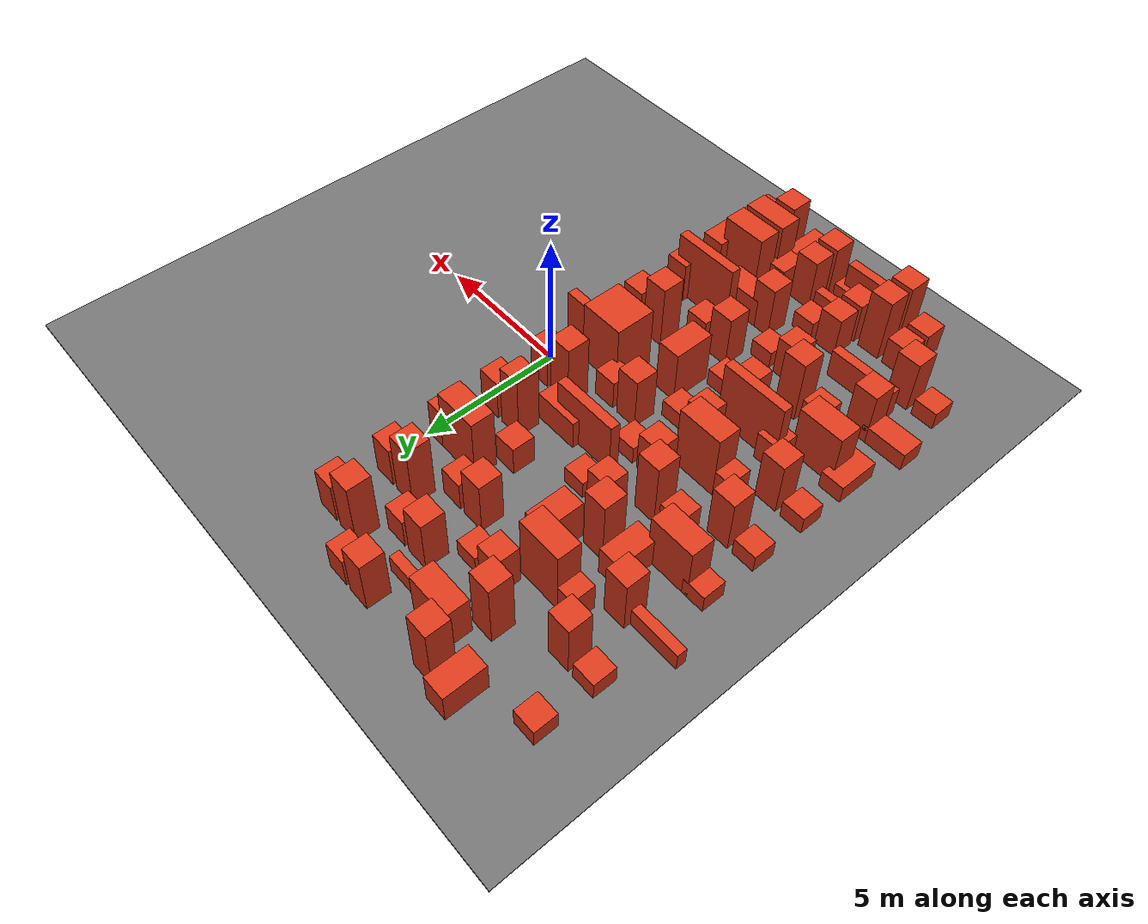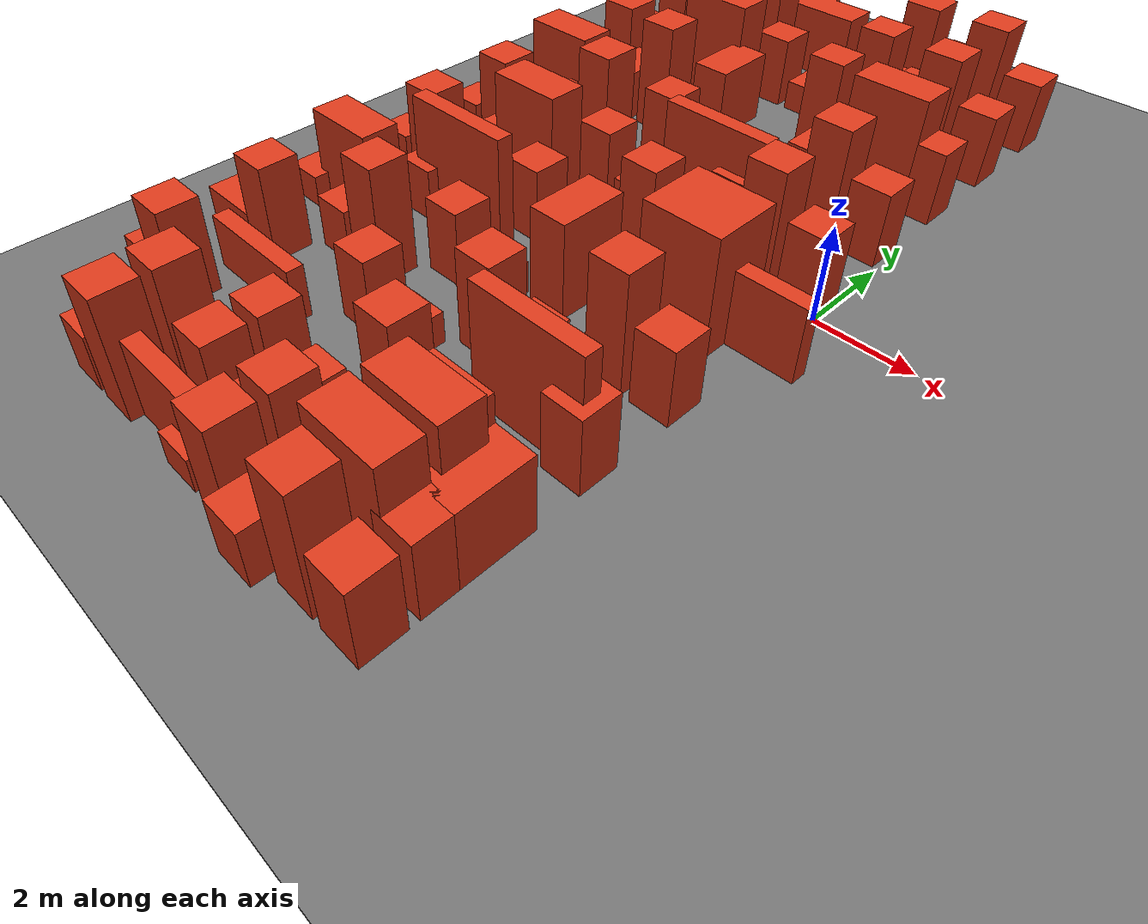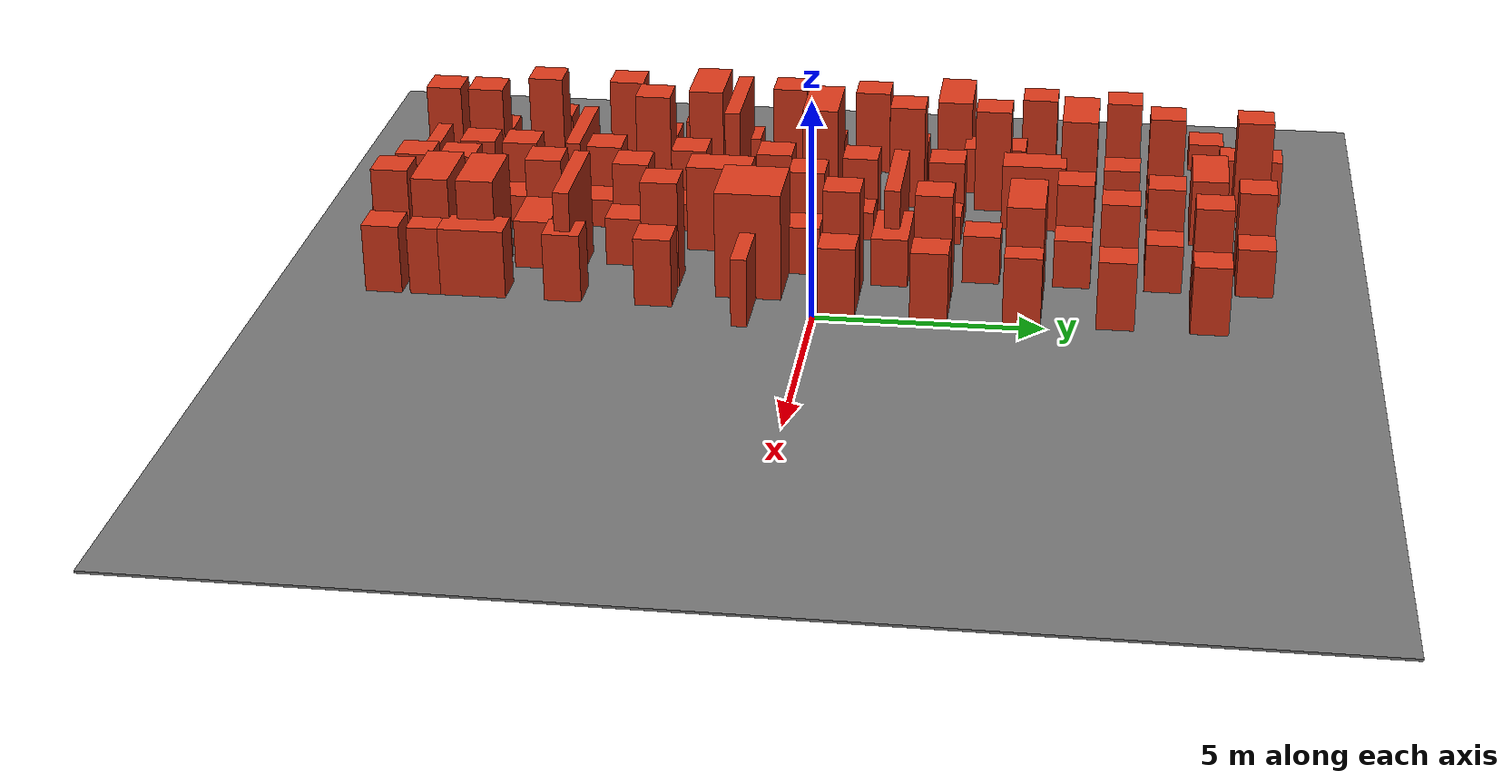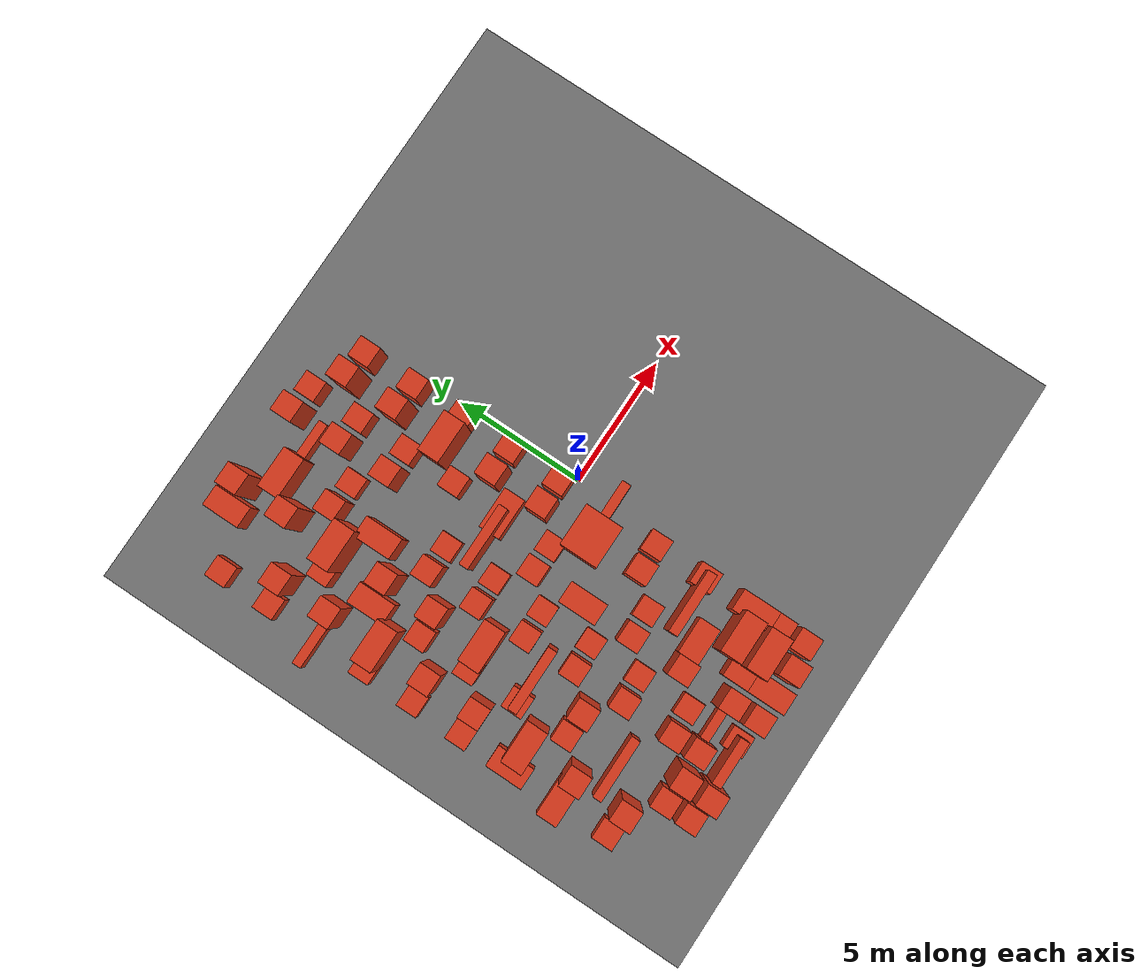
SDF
<sdf version="1.6">
 <world name="dense50_ground_footprint">
  <include><uri>model://sun</uri></include>
  <model name="ground_plane">
   <static>true</static>
   <link name="link">
    <collision name="collision"><geometry><box><size>24 24 0.05</size></box></geometry></collision>
    <visual name="visual">
     <geometry><box><size>24 24 0.05</size></box></geometry>
     <material><ambient>0.35 0.35 0.35 1</ambient><diffuse>0.45 0.45 0.45 1</diffuse></material>
    </visual>
   </link>
  </model>
  <model name="dense50_obstacle_000">
   <static>true</static>
   <pose>-5.500 -9.500 0.800 0 0 0</pose>
   <link name="link">
    <collision name="collision"><geometry><box><size>2.400 0.350 1.600</size></box></geometry></collision>
    <visual name="visual">
     <geometry><box><size>2.400 0.350 1.600</size></box></geometry>
     <material><ambient>0.65 0.16 0.08 1</ambient><diffuse>0.85 0.22 0.10 1</diffuse></material>
    </visual>
   </link>
  </model>
  <model name="dense50_obstacle_001">
   <static>true</static>
   <pose>-4.500 -9.500 0.350 0 0 0</pose>
   <link name="link">
    <collision name="collision"><geometry><box><size>0.820 0.820 0.700</size></box></geometry></collision>
    <visual name="visual">
     <geometry><box><size>0.820 0.820 0.700</size></box></geometry>
     <material><ambient>0.65 0.16 0.08 1</ambient><diffuse>0.85 0.22 0.10 1</diffuse></material>
    </visual>
   </link>
  </model>
  <model name="dense50_obstacle_002">
   <static>true</static>
   <pose>-1.500 -9.500 1.250 0 0 0</pose>
   <link name="link">
    <collision name="collision"><geometry><box><size>0.820 0.820 2.500</size></box></geometry></collision>
    <visual name="visual">
     <geometry><box><size>0.820 0.820 2.500</size></box></geometry>
     <material><ambient>0.65 0.16 0.08 1</ambient><diffuse>0.85 0.22 0.10 1</diffuse></material>
    </visual>
   </link>
  </model>
  <model name="dense50_obstacle_003">
   <static>true</static>
   <pose>-0.500 -9.500 0.800 0 0 0</pose>
   <link name="link">
    <collision name="collision"><geometry><box><size>0.820 0.820 1.600</size></box></geometry></collision>
    <visual name="visual">
     <geometry><box><size>0.820 0.820 1.600</size></box></geometry>
     <material><ambient>0.65 0.16 0.08 1</ambient><diffuse>0.85 0.22 0.10 1</diffuse></material>
    </visual>
   </link>
  </model>
  <model name="dense50_obstacle_008">
   <static>true</static>
   <pose>-7.500 -8.500 0.575 0 0 0</pose>
   <link name="link">
    <collision name="collision"><geometry><box><size>0.820 0.820 1.150</size></box></geometry></collision>
    <visual name="visual">
     <geometry><box><size>0.820 0.820 1.150</size></box></geometry>
     <material><ambient>0.65 0.16 0.08 1</ambient><diffuse>0.85 0.22 0.10 1</diffuse></material>
    </visual>
   </link>
  </model>
  <model name="dense50_obstacle_009">
   <static>true</static>
   <pose>-6.500 -8.500 1.250 0 0 0</pose>
   <link name="link">
    <collision name="collision"><geometry><box><size>0.820 0.820 2.500</size></box></geometry></collision>
    <visual name="visual">
     <geometry><box><size>0.820 0.820 2.500</size></box></geometry>
     <material><ambient>0.65 0.16 0.08 1</ambient><diffuse>0.85 0.22 0.10 1</diffuse></material>
    </visual>
   </link>
  </model>
  <model name="dense50_obstacle_010">
   <static>true</static>
   <pose>-3.500 -8.500 1.025 0 0 0</pose>
   <link name="link">
    <collision name="collision"><geometry><box><size>0.820 0.820 2.050</size></box></geometry></collision>
    <visual name="visual">
     <geometry><box><size>0.820 0.820 2.050</size></box></geometry>
     <material><ambient>0.65 0.16 0.08 1</ambient><diffuse>0.85 0.22 0.10 1</diffuse></material>
    </visual>
   </link>
  </model>
  <model name="dense50_obstacle_011">
   <static>true</static>
   <pose>-2.500 -8.500 0.575 0 0 0</pose>
   <link name="link">
    <collision name="collision"><geometry><box><size>0.820 1.450 1.150</size></box></geometry></collision>
    <visual name="visual">
     <geometry><box><size>0.820 1.450 1.150</size></box></geometry>
     <material><ambient>0.65 0.16 0.08 1</ambient><diffuse>0.85 0.22 0.10 1</diffuse></material>
    </visual>
   </link>
  </model>
  <model name="dense50_obstacle_017">
   <static>true</static>
   <pose>-9.500 -7.500 0.350 0 0 0</pose>
   <link name="link">
    <collision name="collision"><geometry><box><size>0.820 0.820 0.700</size></box></geometry></collision>
    <visual name="visual">
     <geometry><box><size>0.820 0.820 0.700</size></box></geometry>
     <material><ambient>0.65 0.16 0.08 1</ambient><diffuse>0.85 0.22 0.10 1</diffuse></material>
    </visual>
   </link>
  </model>
  <model name="dense50_obstacle_018">
   <static>true</static>
   <pose>-8.500 -7.500 1.025 0 0 0</pose>
   <link name="link">
    <collision name="collision"><geometry><box><size>0.820 0.820 2.050</size></box></geometry></collision>
    <visual name="visual">
     <geometry><box><size>0.820 0.820 2.050</size></box></geometry>
     <material><ambient>0.65 0.16 0.08 1</ambient><diffuse>0.85 0.22 0.10 1</diffuse></material>
    </visual>
   </link>
  </model>
  <model name="dense50_obstacle_019">
   <static>true</static>
   <pose>-5.500 -7.500 0.800 0 0 0</pose>
   <link name="link">
    <collision name="collision"><geometry><box><size>0.820 0.820 1.600</size></box></geometry></collision>
    <visual name="visual">
     <geometry><box><size>0.820 0.820 1.600</size></box></geometry>
     <material><ambient>0.65 0.16 0.08 1</ambient><diffuse>0.85 0.22 0.10 1</diffuse></material>
    </visual>
   </link>
  </model>
  <model name="dense50_obstacle_020">
   <static>true</static>
   <pose>-4.500 -7.500 0.350 0 0 0</pose>
   <link name="link">
    <collision name="collision"><geometry><box><size>0.820 0.820 0.700</size></box></geometry></collision>
    <visual name="visual">
     <geometry><box><size>0.820 0.820 0.700</size></box></geometry>
     <material><ambient>0.65 0.16 0.08 1</ambient><diffuse>0.85 0.22 0.10 1</diffuse></material>
    </visual>
   </link>
  </model>
  <model name="dense50_obstacle_021">
   <static>true</static>
   <pose>-1.500 -7.500 1.250 0 0 0</pose>
   <link name="link">
    <collision name="collision"><geometry><box><size>1.600 0.820 2.500</size></box></geometry></collision>
    <visual name="visual">
     <geometry><box><size>1.600 0.820 2.500</size></box></geometry>
     <material><ambient>0.65 0.16 0.08 1</ambient><diffuse>0.85 0.22 0.10 1</diffuse></material>
    </visual>
   </link>
  </model>
  <model name="dense50_obstacle_022">
   <static>true</static>
   <pose>-0.500 -7.500 0.800 0 0 0</pose>
   <link name="link">
    <collision name="collision"><geometry><box><size>0.820 1.450 1.600</size></box></geometry></collision>
    <visual name="visual">
     <geometry><box><size>0.820 1.450 1.600</size></box></geometry>
     <material><ambient>0.65 0.16 0.08 1</ambient><diffuse>0.85 0.22 0.10 1</diffuse></material>
    </visual>
   </link>
  </model>
  <model name="dense50_obstacle_026">
   <static>true</static>
   <pose>-7.500 -6.500 0.575 0 0 0</pose>
   <link name="link">
    <collision name="collision"><geometry><box><size>2.400 0.350 1.150</size></box></geometry></collision>
    <visual name="visual">
     <geometry><box><size>2.400 0.350 1.150</size></box></geometry>
     <material><ambient>0.65 0.16 0.08 1</ambient><diffuse>0.85 0.22 0.10 1</diffuse></material>
    </visual>
   </link>
  </model>
  <model name="dense50_obstacle_027">
   <static>true</static>
   <pose>-3.500 -6.500 1.025 0 0 0</pose>
   <link name="link">
    <collision name="collision"><geometry><box><size>0.820 0.820 2.050</size></box></geometry></collision>
    <visual name="visual">
     <geometry><box><size>0.820 0.820 2.050</size></box></geometry>
     <material><ambient>0.65 0.16 0.08 1</ambient><diffuse>0.85 0.22 0.10 1</diffuse></material>
    </visual>
   </link>
  </model>
  <model name="dense50_obstacle_028">
   <static>true</static>
   <pose>-2.500 -6.500 0.575 0 0 0</pose>
   <link name="link">
    <collision name="collision"><geometry><box><size>1.600 0.820 1.150</size></box></geometry></collision>
    <visual name="visual">
     <geometry><box><size>1.600 0.820 1.150</size></box></geometry>
     <material><ambient>0.65 0.16 0.08 1</ambient><diffuse>0.85 0.22 0.10 1</diffuse></material>
    </visual>
   </link>
  </model>
  <model name="dense50_obstacle_035">
   <static>true</static>
   <pose>-9.500 -5.500 0.350 0 0 0</pose>
   <link name="link">
    <collision name="collision"><geometry><box><size>1.600 0.820 0.700</size></box></geometry></collision>
    <visual name="visual">
     <geometry><box><size>1.600 0.820 0.700</size></box></geometry>
     <material><ambient>0.65 0.16 0.08 1</ambient><diffuse>0.85 0.22 0.10 1</diffuse></material>
    </visual>
   </link>
  </model>
  <model name="dense50_obstacle_036">
   <static>true</static>
   <pose>-8.500 -5.500 1.025 0 0 0</pose>
   <link name="link">
    <collision name="collision"><geometry><box><size>0.820 0.820 2.050</size></box></geometry></collision>
    <visual name="visual">
     <geometry><box><size>0.820 0.820 2.050</size></box></geometry>
     <material><ambient>0.65 0.16 0.08 1</ambient><diffuse>0.85 0.22 0.10 1</diffuse></material>
    </visual>
   </link>
  </model>
  <model name="dense50_obstacle_037">
   <static>true</static>
   <pose>-5.500 -5.500 0.800 0 0 0</pose>
   <link name="link">
    <collision name="collision"><geometry><box><size>0.820 0.820 1.600</size></box></geometry></collision>
    <visual name="visual">
     <geometry><box><size>0.820 0.820 1.600</size></box></geometry>
     <material><ambient>0.65 0.16 0.08 1</ambient><diffuse>0.85 0.22 0.10 1</diffuse></material>
    </visual>
   </link>
  </model>
  <model name="dense50_obstacle_038">
   <static>true</static>
   <pose>-4.500 -5.500 0.350 0 0 0</pose>
   <link name="link">
    <collision name="collision"><geometry><box><size>0.820 0.820 0.700</size></box></geometry></collision>
    <visual name="visual">
     <geometry><box><size>0.820 0.820 0.700</size></box></geometry>
     <material><ambient>0.65 0.16 0.08 1</ambient><diffuse>0.85 0.22 0.10 1</diffuse></material>
    </visual>
   </link>
  </model>
  <model name="dense50_obstacle_039">
   <static>true</static>
   <pose>-1.500 -5.500 1.250 0 0 0</pose>
   <link name="link">
    <collision name="collision"><geometry><box><size>2.400 0.350 2.500</size></box></geometry></collision>
    <visual name="visual">
     <geometry><box><size>2.400 0.350 2.500</size></box></geometry>
     <material><ambient>0.65 0.16 0.08 1</ambient><diffuse>0.85 0.22 0.10 1</diffuse></material>
    </visual>
   </link>
  </model>
  <model name="dense50_obstacle_040">
   <static>true</static>
   <pose>-0.500 -5.500 0.800 0 0 0</pose>
   <link name="link">
    <collision name="collision"><geometry><box><size>0.820 0.820 1.600</size></box></geometry></collision>
    <visual name="visual">
     <geometry><box><size>0.820 0.820 1.600</size></box></geometry>
     <material><ambient>0.65 0.16 0.08 1</ambient><diffuse>0.85 0.22 0.10 1</diffuse></material>
    </visual>
   </link>
  </model>
  <model name="dense50_obstacle_045">
   <static>true</static>
   <pose>-7.500 -4.500 0.575 0 0 0</pose>
   <link name="link">
    <collision name="collision"><geometry><box><size>0.820 0.820 1.150</size></box></geometry></collision>
    <visual name="visual">
     <geometry><box><size>0.820 0.820 1.150</size></box></geometry>
     <material><ambient>0.65 0.16 0.08 1</ambient><diffuse>0.85 0.22 0.10 1</diffuse></material>
    </visual>
   </link>
  </model>
  <model name="dense50_obstacle_046">
   <static>true</static>
   <pose>-6.500 -4.500 1.250 0 0 0</pose>
   <link name="link">
    <collision name="collision"><geometry><box><size>0.820 0.820 2.500</size></box></geometry></collision>
    <visual name="visual">
     <geometry><box><size>0.820 0.820 2.500</size></box></geometry>
     <material><ambient>0.65 0.16 0.08 1</ambient><diffuse>0.85 0.22 0.10 1</diffuse></material>
    </visual>
   </link>
  </model>
  <model name="dense50_obstacle_047">
   <static>true</static>
   <pose>-3.500 -4.500 1.025 0 0 0</pose>
   <link name="link">
    <collision name="collision"><geometry><box><size>0.820 0.820 2.050</size></box></geometry></collision>
    <visual name="visual">
     <geometry><box><size>0.820 0.820 2.050</size></box></geometry>
     <material><ambient>0.65 0.16 0.08 1</ambient><diffuse>0.85 0.22 0.10 1</diffuse></material>
    </visual>
   </link>
  </model>
  <model name="dense50_obstacle_048">
   <static>true</static>
   <pose>-2.500 -4.500 0.575 0 0 0</pose>
   <link name="link">
    <collision name="collision"><geometry><box><size>0.820 0.820 1.150</size></box></geometry></collision>
    <visual name="visual">
     <geometry><box><size>0.820 0.820 1.150</size></box></geometry>
     <material><ambient>0.65 0.16 0.08 1</ambient><diffuse>0.85 0.22 0.10 1</diffuse></material>
    </visual>
   </link>
  </model>
  <model name="dense50_obstacle_055">
   <static>true</static>
   <pose>-9.500 -3.500 0.350 0 0 0</pose>
   <link name="link">
    <collision name="collision"><geometry><box><size>0.820 1.450 0.700</size></box></geometry></collision>
    <visual name="visual">
     <geometry><box><size>0.820 1.450 0.700</size></box></geometry>
     <material><ambient>0.65 0.16 0.08 1</ambient><diffuse>0.85 0.22 0.10 1</diffuse></material>
    </visual>
   </link>
  </model>
  <model name="dense50_obstacle_056">
   <static>true</static>
   <pose>-8.500 -3.500 1.025 0 0 0</pose>
   <link name="link">
    <collision name="collision"><geometry><box><size>1.600 0.820 2.050</size></box></geometry></collision>
    <visual name="visual">
     <geometry><box><size>1.600 0.820 2.050</size></box></geometry>
     <material><ambient>0.65 0.16 0.08 1</ambient><diffuse>0.85 0.22 0.10 1</diffuse></material>
    </visual>
   </link>
  </model>
  <model name="dense50_obstacle_057">
   <static>true</static>
   <pose>-5.500 -3.500 0.800 0 0 0</pose>
   <link name="link">
    <collision name="collision"><geometry><box><size>0.820 0.820 1.600</size></box></geometry></collision>
    <visual name="visual">
     <geometry><box><size>0.820 0.820 1.600</size></box></geometry>
     <material><ambient>0.65 0.16 0.08 1</ambient><diffuse>0.85 0.22 0.10 1</diffuse></material>
    </visual>
   </link>
  </model>
  <model name="dense50_obstacle_058">
   <static>true</static>
   <pose>-4.500 -3.500 0.350 0 0 0</pose>
   <link name="link">
    <collision name="collision"><geometry><box><size>0.820 0.820 0.700</size></box></geometry></collision>
    <visual name="visual">
     <geometry><box><size>0.820 0.820 0.700</size></box></geometry>
     <material><ambient>0.65 0.16 0.08 1</ambient><diffuse>0.85 0.22 0.10 1</diffuse></material>
    </visual>
   </link>
  </model>
  <model name="dense50_obstacle_059">
   <static>true</static>
   <pose>-1.500 -3.500 1.250 0 0 0</pose>
   <link name="link">
    <collision name="collision"><geometry><box><size>0.820 0.820 2.500</size></box></geometry></collision>
    <visual name="visual">
     <geometry><box><size>0.820 0.820 2.500</size></box></geometry>
     <material><ambient>0.65 0.16 0.08 1</ambient><diffuse>0.85 0.22 0.10 1</diffuse></material>
    </visual>
   </link>
  </model>
  <model name="dense50_obstacle_060">
   <static>true</static>
   <pose>-0.500 -3.500 0.800 0 0 0</pose>
   <link name="link">
    <collision name="collision"><geometry><box><size>0.820 0.820 1.600</size></box></geometry></collision>
    <visual name="visual">
     <geometry><box><size>0.820 0.820 1.600</size></box></geometry>
     <material><ambient>0.65 0.16 0.08 1</ambient><diffuse>0.85 0.22 0.10 1</diffuse></material>
    </visual>
   </link>
  </model>
  <model name="dense50_obstacle_064">
   <static>true</static>
   <pose>-7.500 -2.500 0.575 0 0 0</pose>
   <link name="link">
    <collision name="collision"><geometry><box><size>0.820 0.820 1.150</size></box></geometry></collision>
    <visual name="visual">
     <geometry><box><size>0.820 0.820 1.150</size></box></geometry>
     <material><ambient>0.65 0.16 0.08 1</ambient><diffuse>0.85 0.22 0.10 1</diffuse></material>
    </visual>
   </link>
  </model>
  <model name="dense50_obstacle_065">
   <static>true</static>
   <pose>-6.500 -2.500 1.250 0 0 0</pose>
   <link name="link">
    <collision name="collision"><geometry><box><size>2.400 0.350 2.500</size></box></geometry></collision>
    <visual name="visual">
     <geometry><box><size>2.400 0.350 2.500</size></box></geometry>
     <material><ambient>0.65 0.16 0.08 1</ambient><diffuse>0.85 0.22 0.10 1</diffuse></material>
    </visual>
   </link>
  </model>
  <model name="dense50_obstacle_066">
   <static>true</static>
   <pose>-3.500 -2.500 1.025 0 0 0</pose>
   <link name="link">
    <collision name="collision"><geometry><box><size>0.820 1.450 2.050</size></box></geometry></collision>
    <visual name="visual">
     <geometry><box><size>0.820 1.450 2.050</size></box></geometry>
     <material><ambient>0.65 0.16 0.08 1</ambient><diffuse>0.85 0.22 0.10 1</diffuse></material>
    </visual>
   </link>
  </model>
  <model name="dense50_obstacle_073">
   <static>true</static>
   <pose>-9.500 -1.500 0.350 0 0 0</pose>
   <link name="link">
    <collision name="collision"><geometry><box><size>0.820 0.820 0.700</size></box></geometry></collision>
    <visual name="visual">
     <geometry><box><size>0.820 0.820 0.700</size></box></geometry>
     <material><ambient>0.65 0.16 0.08 1</ambient><diffuse>0.85 0.22 0.10 1</diffuse></material>
    </visual>
   </link>
  </model>
  <model name="dense50_obstacle_074">
   <static>true</static>
   <pose>-8.500 -1.500 1.025 0 0 0</pose>
   <link name="link">
    <collision name="collision"><geometry><box><size>0.820 0.820 2.050</size></box></geometry></collision>
    <visual name="visual">
     <geometry><box><size>0.820 0.820 2.050</size></box></geometry>
     <material><ambient>0.65 0.16 0.08 1</ambient><diffuse>0.85 0.22 0.10 1</diffuse></material>
    </visual>
   </link>
  </model>
  <model name="dense50_obstacle_075">
   <static>true</static>
   <pose>-5.500 -1.500 0.800 0 0 0</pose>
   <link name="link">
    <collision name="collision"><geometry><box><size>0.820 0.820 1.600</size></box></geometry></collision>
    <visual name="visual">
     <geometry><box><size>0.820 0.820 1.600</size></box></geometry>
     <material><ambient>0.65 0.16 0.08 1</ambient><diffuse>0.85 0.22 0.10 1</diffuse></material>
    </visual>
   </link>
  </model>
  <model name="dense50_obstacle_076">
   <static>true</static>
   <pose>-4.500 -1.500 0.350 0 0 0</pose>
   <link name="link">
    <collision name="collision"><geometry><box><size>0.820 0.820 0.700</size></box></geometry></collision>
    <visual name="visual">
     <geometry><box><size>0.820 0.820 0.700</size></box></geometry>
     <material><ambient>0.65 0.16 0.08 1</ambient><diffuse>0.85 0.22 0.10 1</diffuse></material>
    </visual>
   </link>
  </model>
  <model name="dense50_obstacle_077">
   <static>true</static>
   <pose>-1.500 -1.500 1.250 0 0 0</pose>
   <link name="link">
    <collision name="collision"><geometry><box><size>1.600 1.450 2.500</size></box></geometry></collision>
    <visual name="visual">
     <geometry><box><size>1.600 1.450 2.500</size></box></geometry>
     <material><ambient>0.65 0.16 0.08 1</ambient><diffuse>0.85 0.22 0.10 1</diffuse></material>
    </visual>
   </link>
  </model>
  <model name="dense50_obstacle_078">
   <static>true</static>
   <pose>-0.500 -1.500 0.800 0 0 0</pose>
   <link name="link">
    <collision name="collision"><geometry><box><size>2.400 0.350 1.600</size></box></geometry></collision>
    <visual name="visual">
     <geometry><box><size>2.400 0.350 1.600</size></box></geometry>
     <material><ambient>0.65 0.16 0.08 1</ambient><diffuse>0.85 0.22 0.10 1</diffuse></material>
    </visual>
   </link>
  </model>
  <model name="dense50_obstacle_083">
   <static>true</static>
   <pose>-7.500 -0.500 0.575 0 0 0</pose>
   <link name="link">
    <collision name="collision"><geometry><box><size>0.820 0.820 1.150</size></box></geometry></collision>
    <visual name="visual">
     <geometry><box><size>0.820 0.820 1.150</size></box></geometry>
     <material><ambient>0.65 0.16 0.08 1</ambient><diffuse>0.85 0.22 0.10 1</diffuse></material>
    </visual>
   </link>
  </model>
  <model name="dense50_obstacle_084">
   <static>true</static>
   <pose>-6.500 -0.500 1.250 0 0 0</pose>
   <link name="link">
    <collision name="collision"><geometry><box><size>1.600 0.820 2.500</size></box></geometry></collision>
    <visual name="visual">
     <geometry><box><size>1.600 0.820 2.500</size></box></geometry>
     <material><ambient>0.65 0.16 0.08 1</ambient><diffuse>0.85 0.22 0.10 1</diffuse></material>
    </visual>
   </link>
  </model>
  <model name="dense50_obstacle_085">
   <static>true</static>
   <pose>-3.500 -0.500 1.025 0 0 0</pose>
   <link name="link">
    <collision name="collision"><geometry><box><size>0.820 0.820 2.050</size></box></geometry></collision>
    <visual name="visual">
     <geometry><box><size>0.820 0.820 2.050</size></box></geometry>
     <material><ambient>0.65 0.16 0.08 1</ambient><diffuse>0.85 0.22 0.10 1</diffuse></material>
    </visual>
   </link>
  </model>
  <model name="dense50_obstacle_086">
   <static>true</static>
   <pose>-2.500 -0.500 0.575 0 0 0</pose>
   <link name="link">
    <collision name="collision"><geometry><box><size>0.820 0.820 1.150</size></box></geometry></collision>
    <visual name="visual">
     <geometry><box><size>0.820 0.820 1.150</size></box></geometry>
     <material><ambient>0.65 0.16 0.08 1</ambient><diffuse>0.85 0.22 0.10 1</diffuse></material>
    </visual>
   </link>
  </model>
  <model name="dense50_obstacle_092">
   <static>true</static>
   <pose>-9.500 0.500 0.350 0 0 0</pose>
   <link name="link">
    <collision name="collision"><geometry><box><size>0.820 0.820 0.700</size></box></geometry></collision>
    <visual name="visual">
     <geometry><box><size>0.820 0.820 0.700</size></box></geometry>
     <material><ambient>0.65 0.16 0.08 1</ambient><diffuse>0.85 0.22 0.10 1</diffuse></material>
    </visual>
   </link>
  </model>
  <model name="dense50_obstacle_093">
   <static>true</static>
   <pose>-8.500 0.500 1.025 0 0 0</pose>
   <link name="link">
    <collision name="collision"><geometry><box><size>0.820 0.820 2.050</size></box></geometry></collision>
    <visual name="visual">
     <geometry><box><size>0.820 0.820 2.050</size></box></geometry>
     <material><ambient>0.65 0.16 0.08 1</ambient><diffuse>0.85 0.22 0.10 1</diffuse></material>
    </visual>
   </link>
  </model>
  <model name="dense50_obstacle_094">
   <static>true</static>
   <pose>-5.500 0.500 0.800 0 0 0</pose>
   <link name="link">
    <collision name="collision"><geometry><box><size>0.820 0.820 1.600</size></box></geometry></collision>
    <visual name="visual">
     <geometry><box><size>0.820 0.820 1.600</size></box></geometry>
     <material><ambient>0.65 0.16 0.08 1</ambient><diffuse>0.85 0.22 0.10 1</diffuse></material>
    </visual>
   </link>
  </model>
  <model name="dense50_obstacle_095">
   <static>true</static>
   <pose>-4.500 0.500 0.350 0 0 0</pose>
   <link name="link">
    <collision name="collision"><geometry><box><size>0.820 0.820 0.700</size></box></geometry></collision>
    <visual name="visual">
     <geometry><box><size>0.820 0.820 0.700</size></box></geometry>
     <material><ambient>0.65 0.16 0.08 1</ambient><diffuse>0.85 0.22 0.10 1</diffuse></material>
    </visual>
   </link>
  </model>
  <model name="dense50_obstacle_096">
   <static>true</static>
   <pose>-1.500 0.500 1.250 0 0 0</pose>
   <link name="link">
    <collision name="collision"><geometry><box><size>0.820 0.820 2.500</size></box></geometry></collision>
    <visual name="visual">
     <geometry><box><size>0.820 0.820 2.500</size></box></geometry>
     <material><ambient>0.65 0.16 0.08 1</ambient><diffuse>0.85 0.22 0.10 1</diffuse></material>
    </visual>
   </link>
  </model>
  <model name="dense50_obstacle_097">
   <static>true</static>
   <pose>-0.500 0.500 0.800 0 0 0</pose>
   <link name="link">
    <collision name="collision"><geometry><box><size>0.820 0.820 1.600</size></box></geometry></collision>
    <visual name="visual">
     <geometry><box><size>0.820 0.820 1.600</size></box></geometry>
     <material><ambient>0.65 0.16 0.08 1</ambient><diffuse>0.85 0.22 0.10 1</diffuse></material>
    </visual>
   </link>
  </model>
  <model name="dense50_obstacle_102">
   <static>true</static>
   <pose>-7.500 1.500 0.575 0 0 0</pose>
   <link name="link">
    <collision name="collision"><geometry><box><size>0.820 0.820 1.150</size></box></geometry></collision>
    <visual name="visual">
     <geometry><box><size>0.820 0.820 1.150</size></box></geometry>
     <material><ambient>0.65 0.16 0.08 1</ambient><diffuse>0.85 0.22 0.10 1</diffuse></material>
    </visual>
   </link>
  </model>
  <model name="dense50_obstacle_103">
   <static>true</static>
   <pose>-6.500 1.500 1.250 0 0 0</pose>
   <link name="link">
    <collision name="collision"><geometry><box><size>0.820 0.820 2.500</size></box></geometry></collision>
    <visual name="visual">
     <geometry><box><size>0.820 0.820 2.500</size></box></geometry>
     <material><ambient>0.65 0.16 0.08 1</ambient><diffuse>0.85 0.22 0.10 1</diffuse></material>
    </visual>
   </link>
  </model>
  <model name="dense50_obstacle_104">
   <static>true</static>
   <pose>-3.500 1.500 1.025 0 0 0</pose>
   <link name="link">
    <collision name="collision"><geometry><box><size>2.400 0.350 2.050</size></box></geometry></collision>
    <visual name="visual">
     <geometry><box><size>2.400 0.350 2.050</size></box></geometry>
     <material><ambient>0.65 0.16 0.08 1</ambient><diffuse>0.85 0.22 0.10 1</diffuse></material>
    </visual>
   </link>
  </model>
  <model name="dense50_obstacle_105">
   <static>true</static>
   <pose>-2.500 1.500 0.575 0 0 0</pose>
   <link name="link">
    <collision name="collision"><geometry><box><size>1.600 0.820 1.150</size></box></geometry></collision>
    <visual name="visual">
     <geometry><box><size>1.600 0.820 1.150</size></box></geometry>
     <material><ambient>0.65 0.16 0.08 1</ambient><diffuse>0.85 0.22 0.10 1</diffuse></material>
    </visual>
   </link>
  </model>
  <model name="dense50_obstacle_111">
   <static>true</static>
   <pose>-9.500 2.500 0.350 0 0 0</pose>
   <link name="link">
    <collision name="collision"><geometry><box><size>0.820 0.820 0.700</size></box></geometry></collision>
    <visual name="visual">
     <geometry><box><size>0.820 0.820 0.700</size></box></geometry>
     <material><ambient>0.65 0.16 0.08 1</ambient><diffuse>0.85 0.22 0.10 1</diffuse></material>
    </visual>
   </link>
  </model>
  <model name="dense50_obstacle_112">
   <static>true</static>
   <pose>-8.500 2.500 1.025 0 0 0</pose>
   <link name="link">
    <collision name="collision"><geometry><box><size>1.600 0.820 2.050</size></box></geometry></collision>
    <visual name="visual">
     <geometry><box><size>1.600 0.820 2.050</size></box></geometry>
     <material><ambient>0.65 0.16 0.08 1</ambient><diffuse>0.85 0.22 0.10 1</diffuse></material>
    </visual>
   </link>
  </model>
  <model name="dense50_obstacle_113">
   <static>true</static>
   <pose>-5.500 2.500 0.800 0 0 0</pose>
   <link name="link">
    <collision name="collision"><geometry><box><size>0.820 0.820 1.600</size></box></geometry></collision>
    <visual name="visual">
     <geometry><box><size>0.820 0.820 1.600</size></box></geometry>
     <material><ambient>0.65 0.16 0.08 1</ambient><diffuse>0.85 0.22 0.10 1</diffuse></material>
    </visual>
   </link>
  </model>
  <model name="dense50_obstacle_114">
   <static>true</static>
   <pose>-4.500 2.500 0.350 0 0 0</pose>
   <link name="link">
    <collision name="collision"><geometry><box><size>0.820 0.820 0.700</size></box></geometry></collision>
    <visual name="visual">
     <geometry><box><size>0.820 0.820 0.700</size></box></geometry>
     <material><ambient>0.65 0.16 0.08 1</ambient><diffuse>0.85 0.22 0.10 1</diffuse></material>
    </visual>
   </link>
  </model>
  <model name="dense50_obstacle_115">
   <static>true</static>
   <pose>-1.500 2.500 1.250 0 0 0</pose>
   <link name="link">
    <collision name="collision"><geometry><box><size>0.820 0.820 2.500</size></box></geometry></collision>
    <visual name="visual">
     <geometry><box><size>0.820 0.820 2.500</size></box></geometry>
     <material><ambient>0.65 0.16 0.08 1</ambient><diffuse>0.85 0.22 0.10 1</diffuse></material>
    </visual>
   </link>
  </model>
  <model name="dense50_obstacle_116">
   <static>true</static>
   <pose>-0.500 2.500 0.800 0 0 0</pose>
   <link name="link">
    <collision name="collision"><geometry><box><size>0.820 0.820 1.600</size></box></geometry></collision>
    <visual name="visual">
     <geometry><box><size>0.820 0.820 1.600</size></box></geometry>
     <material><ambient>0.65 0.16 0.08 1</ambient><diffuse>0.85 0.22 0.10 1</diffuse></material>
    </visual>
   </link>
  </model>
  <model name="dense50_obstacle_121">
   <static>true</static>
   <pose>-7.500 3.500 0.575 0 0 0</pose>
   <link name="link">
    <collision name="collision"><geometry><box><size>0.820 1.450 1.150</size></box></geometry></collision>
    <visual name="visual">
     <geometry><box><size>0.820 1.450 1.150</size></box></geometry>
     <material><ambient>0.65 0.16 0.08 1</ambient><diffuse>0.85 0.22 0.10 1</diffuse></material>
    </visual>
   </link>
  </model>
  <model name="dense50_obstacle_122">
   <static>true</static>
   <pose>-6.500 3.500 1.250 0 0 0</pose>
   <link name="link">
    <collision name="collision"><geometry><box><size>0.820 0.820 2.500</size></box></geometry></collision>
    <visual name="visual">
     <geometry><box><size>0.820 0.820 2.500</size></box></geometry>
     <material><ambient>0.65 0.16 0.08 1</ambient><diffuse>0.85 0.22 0.10 1</diffuse></material>
    </visual>
   </link>
  </model>
  <model name="dense50_obstacle_123">
   <static>true</static>
   <pose>-2.500 3.500 0.575 0 0 0</pose>
   <link name="link">
    <collision name="collision"><geometry><box><size>0.820 0.820 1.150</size></box></geometry></collision>
    <visual name="visual">
     <geometry><box><size>0.820 0.820 1.150</size></box></geometry>
     <material><ambient>0.65 0.16 0.08 1</ambient><diffuse>0.85 0.22 0.10 1</diffuse></material>
    </visual>
   </link>
  </model>
  <model name="dense50_obstacle_130">
   <static>true</static>
   <pose>-9.500 4.500 0.350 0 0 0</pose>
   <link name="link">
    <collision name="collision"><geometry><box><size>2.400 0.350 0.700</size></box></geometry></collision>
    <visual name="visual">
     <geometry><box><size>2.400 0.350 0.700</size></box></geometry>
     <material><ambient>0.65 0.16 0.08 1</ambient><diffuse>0.85 0.22 0.10 1</diffuse></material>
    </visual>
   </link>
  </model>
  <model name="dense50_obstacle_131">
   <static>true</static>
   <pose>-8.500 4.500 1.025 0 0 0</pose>
   <link name="link">
    <collision name="collision"><geometry><box><size>0.820 0.820 2.050</size></box></geometry></collision>
    <visual name="visual">
     <geometry><box><size>0.820 0.820 2.050</size></box></geometry>
     <material><ambient>0.65 0.16 0.08 1</ambient><diffuse>0.85 0.22 0.10 1</diffuse></material>
    </visual>
   </link>
  </model>
  <model name="dense50_obstacle_132">
   <static>true</static>
   <pose>-5.500 4.500 0.800 0 0 0</pose>
   <link name="link">
    <collision name="collision"><geometry><box><size>0.820 1.450 1.600</size></box></geometry></collision>
    <visual name="visual">
     <geometry><box><size>0.820 1.450 1.600</size></box></geometry>
     <material><ambient>0.65 0.16 0.08 1</ambient><diffuse>0.85 0.22 0.10 1</diffuse></material>
    </visual>
   </link>
  </model>
  <model name="dense50_obstacle_133">
   <static>true</static>
   <pose>-1.500 4.500 1.250 0 0 0</pose>
   <link name="link">
    <collision name="collision"><geometry><box><size>1.600 0.820 2.500</size></box></geometry></collision>
    <visual name="visual">
     <geometry><box><size>1.600 0.820 2.500</size></box></geometry>
     <material><ambient>0.65 0.16 0.08 1</ambient><diffuse>0.85 0.22 0.10 1</diffuse></material>
    </visual>
   </link>
  </model>
  <model name="dense50_obstacle_134">
   <static>true</static>
   <pose>-0.500 4.500 0.800 0 0 0</pose>
   <link name="link">
    <collision name="collision"><geometry><box><size>0.820 0.820 1.600</size></box></geometry></collision>
    <visual name="visual">
     <geometry><box><size>0.820 0.820 1.600</size></box></geometry>
     <material><ambient>0.65 0.16 0.08 1</ambient><diffuse>0.85 0.22 0.10 1</diffuse></material>
    </visual>
   </link>
  </model>
  <model name="dense50_obstacle_139">
   <static>true</static>
   <pose>-7.500 5.500 0.575 0 0 0</pose>
   <link name="link">
    <collision name="collision"><geometry><box><size>0.820 0.820 1.150</size></box></geometry></collision>
    <visual name="visual">
     <geometry><box><size>0.820 0.820 1.150</size></box></geometry>
     <material><ambient>0.65 0.16 0.08 1</ambient><diffuse>0.85 0.22 0.10 1</diffuse></material>
    </visual>
   </link>
  </model>
  <model name="dense50_obstacle_140">
   <static>true</static>
   <pose>-6.500 5.500 1.250 0 0 0</pose>
   <link name="link">
    <collision name="collision"><geometry><box><size>1.600 0.820 2.500</size></box></geometry></collision>
    <visual name="visual">
     <geometry><box><size>1.600 0.820 2.500</size></box></geometry>
     <material><ambient>0.65 0.16 0.08 1</ambient><diffuse>0.85 0.22 0.10 1</diffuse></material>
    </visual>
   </link>
  </model>
  <model name="dense50_obstacle_141">
   <static>true</static>
   <pose>-3.500 5.500 1.025 0 0 0</pose>
   <link name="link">
    <collision name="collision"><geometry><box><size>0.820 0.820 2.050</size></box></geometry></collision>
    <visual name="visual">
     <geometry><box><size>0.820 0.820 2.050</size></box></geometry>
     <material><ambient>0.65 0.16 0.08 1</ambient><diffuse>0.85 0.22 0.10 1</diffuse></material>
    </visual>
   </link>
  </model>
  <model name="dense50_obstacle_142">
   <static>true</static>
   <pose>-2.500 5.500 0.575 0 0 0</pose>
   <link name="link">
    <collision name="collision"><geometry><box><size>0.820 0.820 1.150</size></box></geometry></collision>
    <visual name="visual">
     <geometry><box><size>0.820 0.820 1.150</size></box></geometry>
     <material><ambient>0.65 0.16 0.08 1</ambient><diffuse>0.85 0.22 0.10 1</diffuse></material>
    </visual>
   </link>
  </model>
  <model name="dense50_obstacle_148">
   <static>true</static>
   <pose>-9.500 6.500 0.350 0 0 0</pose>
   <link name="link">
    <collision name="collision"><geometry><box><size>0.820 0.820 0.700</size></box></geometry></collision>
    <visual name="visual">
     <geometry><box><size>0.820 0.820 0.700</size></box></geometry>
     <material><ambient>0.65 0.16 0.08 1</ambient><diffuse>0.85 0.22 0.10 1</diffuse></material>
    </visual>
   </link>
  </model>
  <model name="dense50_obstacle_149">
   <static>true</static>
   <pose>-8.500 6.500 1.025 0 0 0</pose>
   <link name="link">
    <collision name="collision"><geometry><box><size>0.820 0.820 2.050</size></box></geometry></collision>
    <visual name="visual">
     <geometry><box><size>0.820 0.820 2.050</size></box></geometry>
     <material><ambient>0.65 0.16 0.08 1</ambient><diffuse>0.85 0.22 0.10 1</diffuse></material>
    </visual>
   </link>
  </model>
  <model name="dense50_obstacle_150">
   <static>true</static>
   <pose>-5.500 6.500 0.800 0 0 0</pose>
   <link name="link">
    <collision name="collision"><geometry><box><size>0.820 0.820 1.600</size></box></geometry></collision>
    <visual name="visual">
     <geometry><box><size>0.820 0.820 1.600</size></box></geometry>
     <material><ambient>0.65 0.16 0.08 1</ambient><diffuse>0.85 0.22 0.10 1</diffuse></material>
    </visual>
   </link>
  </model>
  <model name="dense50_obstacle_151">
   <static>true</static>
   <pose>-4.500 6.500 0.350 0 0 0</pose>
   <link name="link">
    <collision name="collision"><geometry><box><size>0.820 0.820 0.700</size></box></geometry></collision>
    <visual name="visual">
     <geometry><box><size>0.820 0.820 0.700</size></box></geometry>
     <material><ambient>0.65 0.16 0.08 1</ambient><diffuse>0.85 0.22 0.10 1</diffuse></material>
    </visual>
   </link>
  </model>
  <model name="dense50_obstacle_152">
   <static>true</static>
   <pose>-1.500 6.500 1.250 0 0 0</pose>
   <link name="link">
    <collision name="collision"><geometry><box><size>0.820 0.820 2.500</size></box></geometry></collision>
    <visual name="visual">
     <geometry><box><size>0.820 0.820 2.500</size></box></geometry>
     <material><ambient>0.65 0.16 0.08 1</ambient><diffuse>0.85 0.22 0.10 1</diffuse></material>
    </visual>
   </link>
  </model>
  <model name="dense50_obstacle_153">
   <static>true</static>
   <pose>-0.500 6.500 0.800 0 0 0</pose>
   <link name="link">
    <collision name="collision"><geometry><box><size>0.820 0.820 1.600</size></box></geometry></collision>
    <visual name="visual">
     <geometry><box><size>0.820 0.820 1.600</size></box></geometry>
     <material><ambient>0.65 0.16 0.08 1</ambient><diffuse>0.85 0.22 0.10 1</diffuse></material>
    </visual>
   </link>
  </model>
  <model name="dense50_obstacle_158">
   <static>true</static>
   <pose>-6.500 7.500 1.250 0 0 0</pose>
   <link name="link">
    <collision name="collision"><geometry><box><size>0.820 0.820 2.500</size></box></geometry></collision>
    <visual name="visual">
     <geometry><box><size>0.820 0.820 2.500</size></box></geometry>
     <material><ambient>0.65 0.16 0.08 1</ambient><diffuse>0.85 0.22 0.10 1</diffuse></material>
    </visual>
   </link>
  </model>
  <model name="dense50_obstacle_159">
   <static>true</static>
   <pose>-3.500 7.500 1.025 0 0 0</pose>
   <link name="link">
    <collision name="collision"><geometry><box><size>0.820 0.820 2.050</size></box></geometry></collision>
    <visual name="visual">
     <geometry><box><size>0.820 0.820 2.050</size></box></geometry>
     <material><ambient>0.65 0.16 0.08 1</ambient><diffuse>0.85 0.22 0.10 1</diffuse></material>
    </visual>
   </link>
  </model>
  <model name="dense50_obstacle_160">
   <static>true</static>
   <pose>-2.500 7.500 0.575 0 0 0</pose>
   <link name="link">
    <collision name="collision"><geometry><box><size>0.820 0.820 1.150</size></box></geometry></collision>
    <visual name="visual">
     <geometry><box><size>0.820 0.820 1.150</size></box></geometry>
     <material><ambient>0.65 0.16 0.08 1</ambient><diffuse>0.85 0.22 0.10 1</diffuse></material>
    </visual>
   </link>
  </model>
  <model name="dense50_obstacle_167">
   <static>true</static>
   <pose>-9.500 8.500 0.350 0 0 0</pose>
   <link name="link">
    <collision name="collision"><geometry><box><size>0.820 0.820 0.700</size></box></geometry></collision>
    <visual name="visual">
     <geometry><box><size>0.820 0.820 0.700</size></box></geometry>
     <material><ambient>0.65 0.16 0.08 1</ambient><diffuse>0.85 0.22 0.10 1</diffuse></material>
    </visual>
   </link>
  </model>
  <model name="dense50_obstacle_168">
   <static>true</static>
   <pose>-5.500 8.500 0.800 0 0 0</pose>
   <link name="link">
    <collision name="collision"><geometry><box><size>1.600 0.820 1.600</size></box></geometry></collision>
    <visual name="visual">
     <geometry><box><size>1.600 0.820 1.600</size></box></geometry>
     <material><ambient>0.65 0.16 0.08 1</ambient><diffuse>0.85 0.22 0.10 1</diffuse></material>
    </visual>
   </link>
  </model>
  <model name="dense50_obstacle_169">
   <static>true</static>
   <pose>-4.500 8.500 0.350 0 0 0</pose>
   <link name="link">
    <collision name="collision"><geometry><box><size>2.400 0.350 0.700</size></box></geometry></collision>
    <visual name="visual">
     <geometry><box><size>2.400 0.350 0.700</size></box></geometry>
     <material><ambient>0.65 0.16 0.08 1</ambient><diffuse>0.85 0.22 0.10 1</diffuse></material>
    </visual>
   </link>
  </model>
  <model name="dense50_obstacle_170">
   <static>true</static>
   <pose>-1.500 8.500 1.250 0 0 0</pose>
   <link name="link">
    <collision name="collision"><geometry><box><size>0.820 0.820 2.500</size></box></geometry></collision>
    <visual name="visual">
     <geometry><box><size>0.820 0.820 2.500</size></box></geometry>
     <material><ambient>0.65 0.16 0.08 1</ambient><diffuse>0.85 0.22 0.10 1</diffuse></material>
    </visual>
   </link>
  </model>
  <model name="dense50_obstacle_171">
   <static>true</static>
   <pose>-0.500 8.500 0.800 0 0 0</pose>
   <link name="link">
    <collision name="collision"><geometry><box><size>0.820 0.820 1.600</size></box></geometry></collision>
    <visual name="visual">
     <geometry><box><size>0.820 0.820 1.600</size></box></geometry>
     <material><ambient>0.65 0.16 0.08 1</ambient><diffuse>0.85 0.22 0.10 1</diffuse></material>
    </visual>
   </link>
  </model>
  <model name="dense50_obstacle_176">
   <static>true</static>
   <pose>-7.500 9.500 0.575 0 0 0</pose>
   <link name="link">
    <collision name="collision"><geometry><box><size>0.820 1.450 1.150</size></box></geometry></collision>
    <visual name="visual">
     <geometry><box><size>0.820 1.450 1.150</size></box></geometry>
     <material><ambient>0.65 0.16 0.08 1</ambient><diffuse>0.85 0.22 0.10 1</diffuse></material>
    </visual>
   </link>
  </model>
  <model name="dense50_obstacle_177">
   <static>true</static>
   <pose>-6.500 9.500 1.250 0 0 0</pose>
   <link name="link">
    <collision name="collision"><geometry><box><size>0.820 0.820 2.500</size></box></geometry></collision>
    <visual name="visual">
     <geometry><box><size>0.820 0.820 2.500</size></box></geometry>
     <material><ambient>0.65 0.16 0.08 1</ambient><diffuse>0.85 0.22 0.10 1</diffuse></material>
    </visual>
   </link>
  </model>
  <model name="dense50_obstacle_178">
   <static>true</static>
   <pose>-3.500 9.500 1.025 0 0 0</pose>
   <link name="link">
    <collision name="collision"><geometry><box><size>0.820 0.820 2.050</size></box></geometry></collision>
    <visual name="visual">
     <geometry><box><size>0.820 0.820 2.050</size></box></geometry>
     <material><ambient>0.65 0.16 0.08 1</ambient><diffuse>0.85 0.22 0.10 1</diffuse></material>
    </visual>
   </link>
  </model>
  <model name="dense50_obstacle_179">
   <static>true</static>
   <pose>-2.500 9.500 0.575 0 0 0</pose>
   <link name="link">
    <collision name="collision"><geometry><box><size>0.820 0.820 1.150</size></box></geometry></collision>
    <visual name="visual">
     <geometry><box><size>0.820 0.820 1.150</size></box></geometry>
     <material><ambient>0.65 0.16 0.08 1</ambient><diffuse>0.85 0.22 0.10 1</diffuse></material>
    </visual>
   </link>
  </model>
  <model name="dense50_obstacle_184">
   <static>true</static>
   <pose>-7.500 -9.500 0.575 0 0 0</pose>
   <link name="link">
    <collision name="collision"><geometry><box><size>0.820 0.820 1.150</size></box></geometry></collision>
    <visual name="visual">
     <geometry><box><size>0.820 0.820 1.150</size></box></geometry>
     <material><ambient>0.65 0.16 0.08 1</ambient><diffuse>0.85 0.22 0.10 1</diffuse></material>
    </visual>
   </link>
  </model>
  <model name="dense50_obstacle_185">
   <static>true</static>
   <pose>-6.500 -9.500 1.250 0 0 0</pose>
   <link name="link">
    <collision name="collision"><geometry><box><size>0.820 0.820 2.500</size></box></geometry></collision>
    <visual name="visual">
     <geometry><box><size>0.820 0.820 2.500</size></box></geometry>
     <material><ambient>0.65 0.16 0.08 1</ambient><diffuse>0.85 0.22 0.10 1</diffuse></material>
    </visual>
   </link>
  </model>
  <model name="dense50_obstacle_186">
   <static>true</static>
   <pose>-3.500 -9.500 1.025 0 0 0</pose>
   <link name="link">
    <collision name="collision"><geometry><box><size>0.820 0.820 2.050</size></box></geometry></collision>
    <visual name="visual">
     <geometry><box><size>0.820 0.820 2.050</size></box></geometry>
     <material><ambient>0.65 0.16 0.08 1</ambient><diffuse>0.85 0.22 0.10 1</diffuse></material>
    </visual>
   </link>
  </model>
  <model name="dense50_obstacle_187">
   <static>true</static>
   <pose>-2.500 -9.500 0.575 0 0 0</pose>
   <link name="link">
    <collision name="collision"><geometry><box><size>0.820 1.450 1.150</size></box></geometry></collision>
    <visual name="visual">
     <geometry><box><size>0.820 1.450 1.150</size></box></geometry>
     <material><ambient>0.65 0.16 0.08 1</ambient><diffuse>0.85 0.22 0.10 1</diffuse></material>
    </visual>
   </link>
  </model>
  <model name="dense50_obstacle_194">
   <static>true</static>
   <pose>-5.500 -8.500 0.800 0 0 0</pose>
   <link name="link">
    <collision name="collision"><geometry><box><size>0.820 0.820 1.600</size></box></geometry></collision>
    <visual name="visual">
     <geometry><box><size>0.820 0.820 1.600</size></box></geometry>
     <material><ambient>0.65 0.16 0.08 1</ambient><diffuse>0.85 0.22 0.10 1</diffuse></material>
    </visual>
   </link>
  </model>
  <model name="dense50_obstacle_195">
   <static>true</static>
   <pose>-4.500 -8.500 0.350 0 0 0</pose>
   <link name="link">
    <collision name="collision"><geometry><box><size>2.400 0.350 0.700</size></box></geometry></collision>
    <visual name="visual">
     <geometry><box><size>2.400 0.350 0.700</size></box></geometry>
     <material><ambient>0.65 0.16 0.08 1</ambient><diffuse>0.85 0.22 0.10 1</diffuse></material>
    </visual>
   </link>
  </model>
  <model name="dense50_obstacle_196">
   <static>true</static>
   <pose>-1.500 -8.500 1.250 0 0 0</pose>
   <link name="link">
    <collision name="collision"><geometry><box><size>1.600 0.820 2.500</size></box></geometry></collision>
    <visual name="visual">
     <geometry><box><size>1.600 0.820 2.500</size></box></geometry>
     <material><ambient>0.65 0.16 0.08 1</ambient><diffuse>0.85 0.22 0.10 1</diffuse></material>
    </visual>
   </link>
  </model>
  <model name="dense50_obstacle_197">
   <static>true</static>
   <pose>-0.500 -8.500 0.800 0 0 0</pose>
   <link name="link">
    <collision name="collision"><geometry><box><size>0.820 0.820 1.600</size></box></geometry></collision>
    <visual name="visual">
     <geometry><box><size>0.820 0.820 1.600</size></box></geometry>
     <material><ambient>0.65 0.16 0.08 1</ambient><diffuse>0.85 0.22 0.10 1</diffuse></material>
    </visual>
   </link>
  </model>
 </world>
</sdf>
